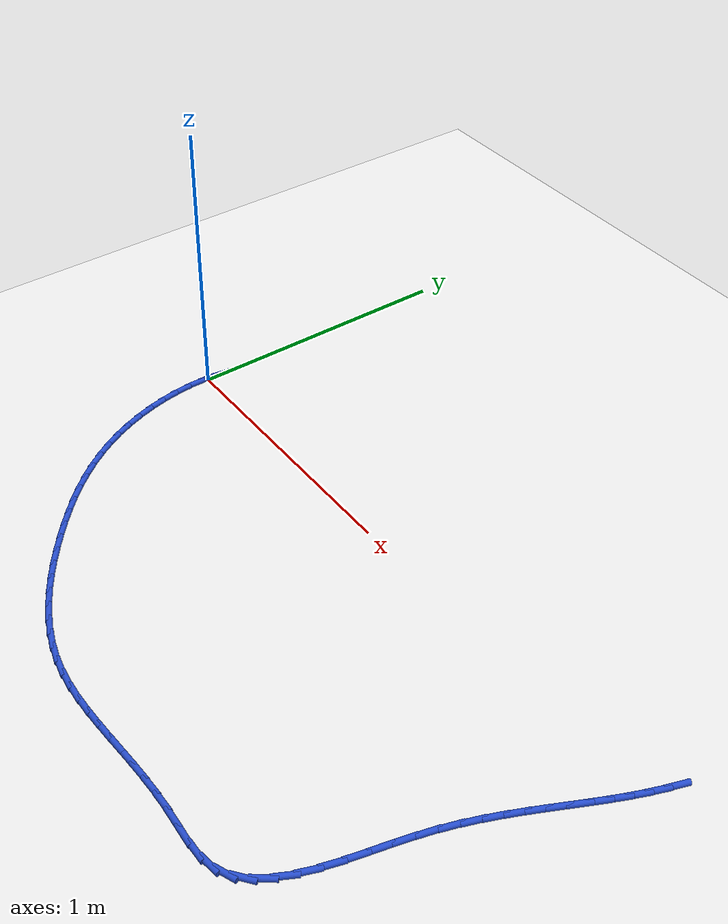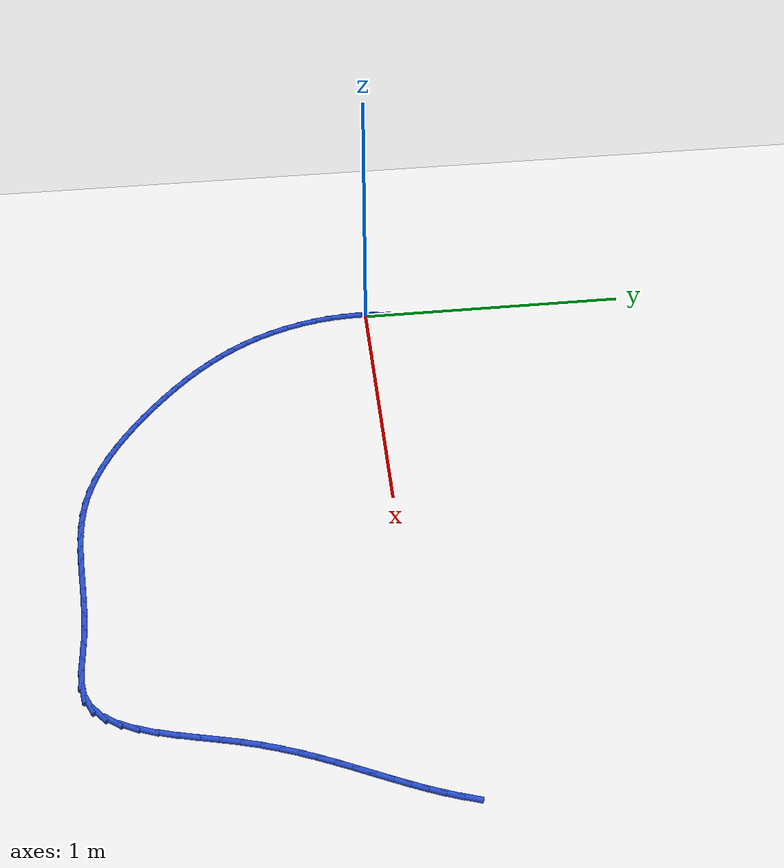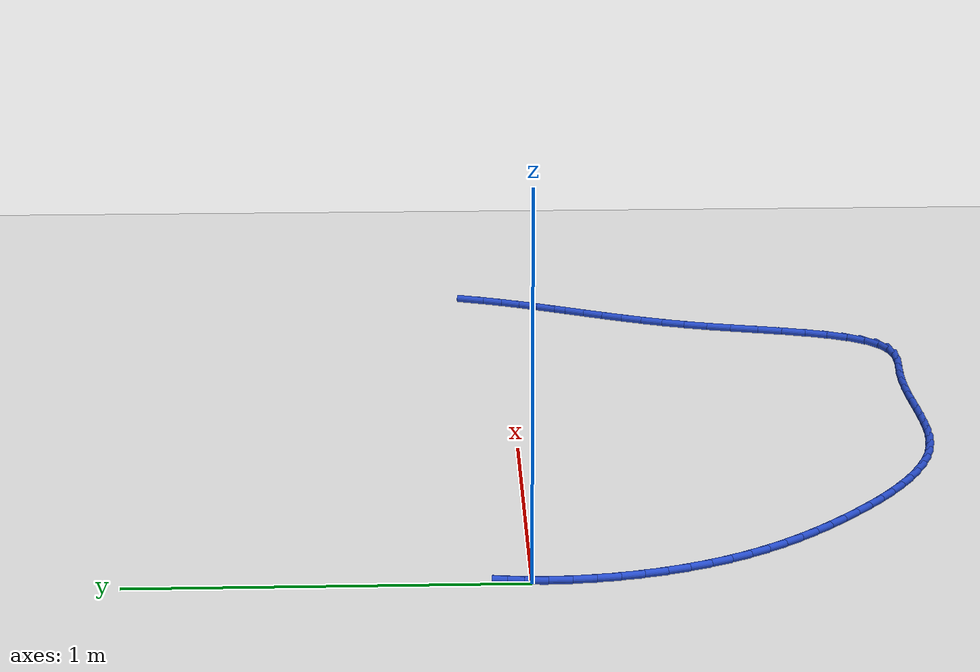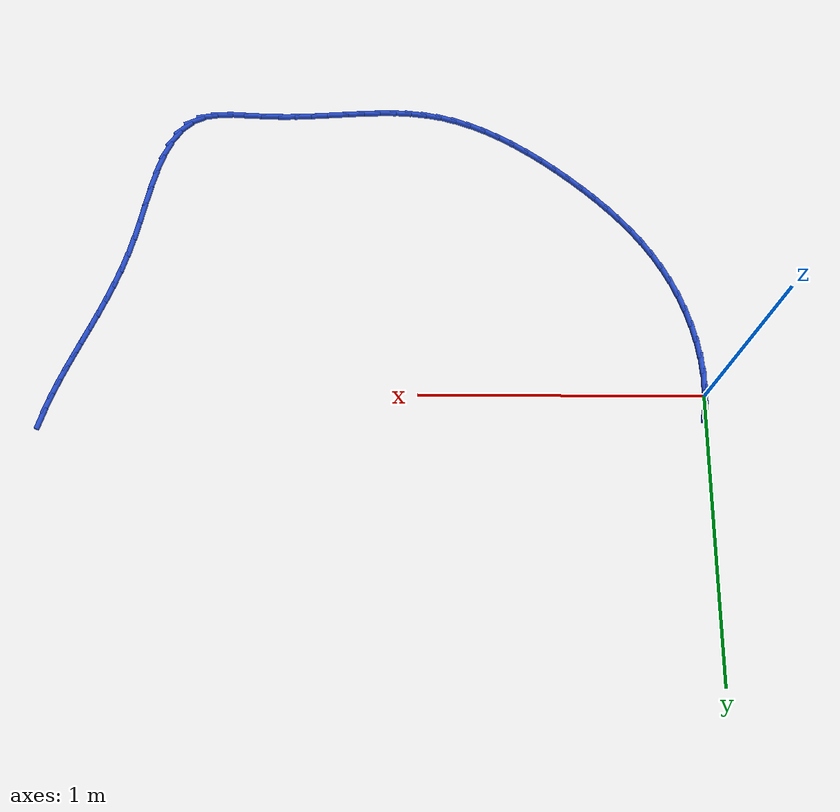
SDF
<sdf version="1.6">
 <world name="default">
  <model name="ground_plane">
   <static>1</static>
   <link name="link">
    <collision name="collision">
     <geometry><plane><normal>0 0 1</normal><size>100 100</size></plane></geometry>
     <surface><friction><ode><mu>100</mu><mu2>50</mu2></ode></friction></surface>
    </collision>
    <visual name="visual">
     <cast_shadows>0</cast_shadows>
     <geometry><plane><normal>0 0 1</normal><size>100 100</size></plane></geometry>
     <material>
      <script><uri>file://media/materials/scripts/gazebo.material</uri><name>Gazebo/WhiteGlow</name></script>
     </material>
    </visual>
   </link>
  </model>
  <model name="line">
   <link name="link_0">
    <pose>2.0816681711721685e-17 -1.8041124150158794e-16 0.01 0 1.57 1.485799585244071</pose>
    <collision name="collision">
     <geometry><cylinder><radius>0.01</radius><length>0.08</length></cylinder></geometry>
    </collision>
    <visual name="visual">
     <material>
      <script><name>Gazebo/Blue</name><uri>file://media/materials/scripts/gazebo.material</uri></script>
     </material>
     <geometry><cylinder><radius>0.01</radius><length>0.08</length></cylinder></geometry>
    </visual>
   </link>
   <link name="link_1">
    <pose>0.004936493880589521 0.0579386956487066 0.01 0 1.57 1.4162435347815363</pose>
    <collision name="collision">
     <geometry><cylinder><radius>0.01</radius><length>0.08</length></cylinder></geometry>
    </collision>
    <visual name="visual">
     <material>
      <script><name>Gazebo/Blue</name><uri>file://media/materials/scripts/gazebo.material</uri></script>
     </material>
     <geometry><cylinder><radius>0.01</radius><length>0.08</length></cylinder></geometry>
    </visual>
   </link>
   <link name="link_68">
    <pose>2.3043835177479663 0.09287211847076683 0.01 0 1.57 1.2378838537323642</pose>
    <collision name="collision">
     <geometry><cylinder><radius>0.01</radius><length>0.08</length></cylinder></geometry>
    </collision>
    <visual name="visual">
     <material>
      <script><name>Gazebo/Blue</name><uri>file://media/materials/scripts/gazebo.material</uri></script>
     </material>
     <geometry><cylinder><radius>0.01</radius><length>0.08</length></cylinder></geometry>
    </visual>
   </link>
   <link name="link_69">
    <pose>2.2858589132835667 0.039299091603942876 0.01 0 1.57 1.1953582465258388</pose>
    <collision name="collision">
     <geometry><cylinder><radius>0.01</radius><length>0.08</length></cylinder></geometry>
    </collision>
    <visual name="visual">
     <material>
      <script><name>Gazebo/Blue</name><uri>file://media/materials/scripts/gazebo.material</uri></script>
     </material>
     <geometry><cylinder><radius>0.01</radius><length>0.08</length></cylinder></geometry>
    </visual>
   </link>
   <link name="link_70">
    <pose>2.265244053709176 -0.01300528134997513 0.01 0 1.57 1.1614862032121465</pose>
    <collision name="collision">
     <geometry><cylinder><radius>0.01</radius><length>0.08</length></cylinder></geometry>
    </collision>
    <visual name="visual">
     <material>
      <script><name>Gazebo/Blue</name><uri>file://media/materials/scripts/gazebo.material</uri></script>
     </material>
     <geometry><cylinder><radius>0.01</radius><length>0.08</length></cylinder></geometry>
    </visual>
   </link>
   <link name="link_71">
    <pose>2.2429289591815174 -0.06444492095828752 0.01 0 1.57 1.1368272140684965</pose>
    <collision name="collision">
     <geometry><cylinder><radius>0.01</radius><length>0.08</length></cylinder></geometry>
    </collision>
    <visual name="visual">
     <material>
      <script><name>Gazebo/Blue</name><uri>file://media/materials/scripts/gazebo.material</uri></script>
     </material>
     <geometry><cylinder><radius>0.01</radius><length>0.08</length></cylinder></geometry>
    </visual>
   </link>
   <link name="link_72">
    <pose>2.2193036498573084 -0.11542374778829703 0.01 0 1.57 1.121634101998973</pose>
    <collision name="collision">
     <geometry><cylinder><radius>0.01</radius><length>0.08</length></cylinder></geometry>
    </collision>
    <visual name="visual">
     <material>
      <script><name>Gazebo/Blue</name><uri>file://media/materials/scripts/gazebo.material</uri></script>
     </material>
     <geometry><cylinder><radius>0.01</radius><length>0.08</length></cylinder></geometry>
    </visual>
   </link>
   <link name="link_73">
    <pose>2.194758145893269 -0.1663456824073054 0.01 0 1.57 1.115906228522763</pose>
    <collision name="collision">
     <geometry><cylinder><radius>0.01</radius><length>0.08</length></cylinder></geometry>
    </collision>
    <visual name="visual">
     <material>
      <script><name>Gazebo/Blue</name><uri>file://media/materials/scripts/gazebo.material</uri></script>
     </material>
     <geometry><cylinder><radius>0.01</radius><length>0.08</length></cylinder></geometry>
    </visual>
   </link>
   <link name="link_74">
    <pose>2.1696824674461186 -0.21761464538261466 0.01 0 1.57 1.1194357346016213</pose>
    <collision name="collision">
     <geometry><cylinder><radius>0.01</radius><length>0.08</length></cylinder></geometry>
    </collision>
    <visual name="visual">
     <material>
      <script><name>Gazebo/Blue</name><uri>file://media/materials/scripts/gazebo.material</uri></script>
     </material>
     <geometry><cylinder><radius>0.01</radius><length>0.08</length></cylinder></geometry>
    </visual>
   </link>
   <link name="link_75">
    <pose>2.144466634672577 -0.2696345572815274 0.01 0 1.57 1.1318387794932914</pose>
    <collision name="collision">
     <geometry><cylinder><radius>0.01</radius><length>0.08</length></cylinder></geometry>
    </collision>
    <visual name="visual">
     <material>
      <script><name>Gazebo/Blue</name><uri>file://media/materials/scripts/gazebo.material</uri></script>
     </material>
     <geometry><cylinder><radius>0.01</radius><length>0.08</length></cylinder></geometry>
    </visual>
   </link>
   <link name="link_76">
    <pose>2.1195006677293646 -0.32280933867134415 0.01 0 1.57 1.1525712465655042</pose>
    <collision name="collision">
     <geometry><cylinder><radius>0.01</radius><length>0.08</length></cylinder></geometry>
    </collision>
    <visual name="visual">
     <material>
      <script><name>Gazebo/Blue</name><uri>file://media/materials/scripts/gazebo.material</uri></script>
     </material>
     <geometry><cylinder><radius>0.01</radius><length>0.08</length></cylinder></geometry>
    </visual>
   </link>
   <link name="link_77">
    <pose>2.0951745867732003 -0.37754291011936736 0.01 0 1.57 1.180933799105465</pose>
    <collision name="collision">
     <geometry><cylinder><radius>0.01</radius><length>0.08</length></cylinder></geometry>
    </collision>
    <visual name="visual">
     <material>
      <script><name>Gazebo/Blue</name><uri>file://media/materials/scripts/gazebo.material</uri></script>
     </material>
     <geometry><cylinder><radius>0.01</radius><length>0.08</length></cylinder></geometry>
    </visual>
   </link>
   <link name="link_78">
    <pose>2.0718784119608036 -0.43423919219289986 0.01 0 1.57 1.2160743650007382</pose>
    <collision name="collision">
     <geometry><cylinder><radius>0.01</radius><length>0.08</length></cylinder></geometry>
    </collision>
    <visual name="visual">
     <material>
      <script><name>Gazebo/Blue</name><uri>file://media/materials/scripts/gazebo.material</uri></script>
     </material>
     <geometry><cylinder><radius>0.01</radius><length>0.08</length></cylinder></geometry>
    </visual>
   </link>
   <link name="link_79">
    <pose>2.0500021634488945 -0.49330210545924186 0.01 0 1.57 1.2569970818154903</pose>
    <collision name="collision">
     <geometry><cylinder><radius>0.01</radius><length>0.08</length></cylinder></geometry>
    </collision>
    <visual name="visual">
     <material>
      <script><name>Gazebo/Blue</name><uri>file://media/materials/scripts/gazebo.material</uri></script>
     </material>
     <geometry><cylinder><radius>0.01</radius><length>0.08</length></cylinder></geometry>
    </visual>
   </link>
   <link name="link_80">
    <pose>2.0299358613941934 -0.5551355704856962 0.01 0 1.57 1.3008335487449165</pose>
    <collision name="collision">
     <geometry><cylinder><radius>0.01</radius><length>0.08</length></cylinder></geometry>
    </collision>
    <visual name="visual">
     <material>
      <script><name>Gazebo/Blue</name><uri>file://media/materials/scripts/gazebo.material</uri></script>
     </material>
     <geometry><cylinder><radius>0.01</radius><length>0.08</length></cylinder></geometry>
    </visual>
   </link>
   <link name="link_81">
    <pose>2.011981077499993 -0.6200203260335527 0.01 0 1.57 1.3295970172447635</pose>
    <collision name="collision">
     <geometry><cylinder><radius>0.01</radius><length>0.08</length></cylinder></geometry>
    </collision>
    <visual name="visual">
     <material>
      <script><name>Gazebo/Blue</name><uri>file://media/materials/scripts/gazebo.material</uri></script>
     </material>
     <geometry><cylinder><radius>0.01</radius><length>0.08</length></cylinder></geometry>
    </visual>
   </link>
   <link name="link_82">
    <pose>1.9955166642460203 -0.686952043505674 0.01 0 1.57 1.335061045586147</pose>
    <collision name="collision">
     <geometry><cylinder><radius>0.01</radius><length>0.08</length></cylinder></geometry>
    </collision>
    <visual name="visual">
     <material>
      <script><name>Gazebo/Blue</name><uri>file://media/materials/scripts/gazebo.material</uri></script>
     </material>
     <geometry><cylinder><radius>0.01</radius><length>0.08</length></cylinder></geometry>
    </visual>
   </link>
   <link name="link_83">
    <pose>1.9793727140397324 -0.7541621383552559 0.01 0 1.57 1.3176243333979045</pose>
    <collision name="collision">
     <geometry><cylinder><radius>0.01</radius><length>0.08</length></cylinder></geometry>
    </collision>
    <visual name="visual">
     <material>
      <script><name>Gazebo/Blue</name><uri>file://media/materials/scripts/gazebo.material</uri></script>
     </material>
     <geometry><cylinder><radius>0.01</radius><length>0.08</length></cylinder></geometry>
    </visual>
   </link>
   <link name="link_84">
    <pose>1.9623720540217517 -0.8198719077275386 0.01 0 1.57 1.2748588544810358</pose>
    <collision name="collision">
     <geometry><cylinder><radius>0.01</radius><length>0.08</length></cylinder></geometry>
    </collision>
    <visual name="visual">
     <material>
      <script><name>Gazebo/Blue</name><uri>file://media/materials/scripts/gazebo.material</uri></script>
     </material>
     <geometry><cylinder><radius>0.01</radius><length>0.08</length></cylinder></geometry>
    </visual>
   </link>
   <link name="link_85">
    <pose>1.9433375113327018 -0.8823026487677648 0.01 0 1.57 1.2009066091767648</pose>
    <collision name="collision">
     <geometry><cylinder><radius>0.01</radius><length>0.08</length></cylinder></geometry>
    </collision>
    <visual name="visual">
     <material>
      <script><name>Gazebo/Blue</name><uri>file://media/materials/scripts/gazebo.material</uri></script>
     </material>
     <geometry><cylinder><radius>0.01</radius><length>0.08</length></cylinder></geometry>
    </visual>
   </link>
   <link name="link_86">
    <pose>1.9210919131132036 -0.9396756586211767 0.01 0 1.57 1.0857664784242493</pose>
    <collision name="collision">
     <geometry><cylinder><radius>0.01</radius><length>0.08</length></cylinder></geometry>
    </collision>
    <visual name="visual">
     <material>
      <script><name>Gazebo/Blue</name><uri>file://media/materials/scripts/gazebo.material</uri></script>
     </material>
     <geometry><cylinder><radius>0.01</radius><length>0.08</length></cylinder></geometry>
    </visual>
   </link>
   <link name="link_87">
    <pose>1.8944580865038811 -0.9902122344330149 0.01 0 1.57 0.9158209402124141</pose>
    <collision name="collision">
     <geometry><cylinder><radius>0.01</radius><length>0.08</length></cylinder></geometry>
    </collision>
    <visual name="visual">
     <material>
      <script><name>Gazebo/Blue</name><uri>file://media/materials/scripts/gazebo.material</uri></script>
     </material>
     <geometry><cylinder><radius>0.01</radius><length>0.08</length></cylinder></geometry>
    </visual>
   </link>
   <link name="link_88">
    <pose>1.8622588586453563 -1.032133673348522 0.01 0 1.57 0.6805721566438457</pose>
    <collision name="collision">
     <geometry><cylinder><radius>0.01</radius><length>0.08</length></cylinder></geometry>
    </collision>
    <visual name="visual">
     <material>
      <script><name>Gazebo/Blue</name><uri>file://media/materials/scripts/gazebo.material</uri></script>
     </material>
     <geometry><cylinder><radius>0.01</radius><length>0.08</length></cylinder></geometry>
    </visual>
   </link>
   <link name="link_89">
    <pose>1.8233170566782526 -1.0636612725129397 0.01 0 1.57 0.39235285872559467</pose>
    <collision name="collision">
     <geometry><cylinder><radius>0.01</radius><length>0.08</length></cylinder></geometry>
    </collision>
    <visual name="visual">
     <material>
      <script><name>Gazebo/Blue</name><uri>file://media/materials/scripts/gazebo.material</uri></script>
     </material>
     <geometry><cylinder><radius>0.01</radius><length>0.08</length></cylinder></geometry>
    </visual>
   </link>
   <link name="link_90">
    <pose>1.776473314003852 -1.0830455877508562 0.01 0 1.57 0.13885991426151761</pose>
    <collision name="collision">
     <geometry><cylinder><radius>0.01</radius><length>0.08</length></cylinder></geometry>
    </collision>
    <visual name="visual">
     <material>
      <script><name>Gazebo/Blue</name><uri>file://media/materials/scripts/gazebo.material</uri></script>
     </material>
     <geometry><cylinder><radius>0.01</radius><length>0.08</length></cylinder></geometry>
    </visual>
   </link>
   <link name="link_91">
    <pose>1.7218704295000535 -1.0906768516480394 0.01 0 1.57 -0.0028806379219940845</pose>
    <collision name="collision">
     <geometry><cylinder><radius>0.01</radius><length>0.08</length></cylinder></geometry>
    </collision>
    <visual name="visual">
     <material>
      <script><name>Gazebo/Blue</name><uri>file://media/materials/scripts/gazebo.material</uri></script>
     </material>
     <geometry><cylinder><radius>0.01</radius><length>0.08</length></cylinder></geometry>
    </visual>
   </link>
   <link name="link_92">
    <pose>1.6618168732539154 -1.0905038586180629 0.01 0 1.57 -0.05854749431642583</pose>
    <collision name="collision">
     <geometry><cylinder><radius>0.01</radius><length>0.08</length></cylinder></geometry>
    </collision>
    <visual name="visual">
     <material>
      <script><name>Gazebo/Blue</name><uri>file://media/materials/scripts/gazebo.material</uri></script>
     </material>
     <geometry><cylinder><radius>0.01</radius><length>0.08</length></cylinder></geometry>
    </visual>
   </link>
   <link name="link_93">
    <pose>1.5988257590343316 -1.0868116670426473 0.01 0 1.57 -0.047304843614724174</pose>
    <collision name="collision">
     <geometry><cylinder><radius>0.01</radius><length>0.08</length></cylinder></geometry>
    </collision>
    <visual name="visual">
     <material>
      <script><name>Gazebo/Blue</name><uri>file://media/materials/scripts/gazebo.material</uri></script>
     </material>
     <geometry><cylinder><radius>0.01</radius><length>0.08</length></cylinder></geometry>
    </visual>
   </link>
   <link name="link_94">
    <pose>1.535370485622706 -1.083807684203939 0.01 0 1.57 -0.0056696690379753915</pose>
    <collision name="collision">
     <geometry><cylinder><radius>0.01</radius><length>0.08</length></cylinder></geometry>
    </collision>
    <visual name="visual">
     <material>
      <script><name>Gazebo/Blue</name><uri>file://media/materials/scripts/gazebo.material</uri></script>
     </material>
     <geometry><cylinder><radius>0.01</radius><length>0.08</length></cylinder></geometry>
    </visual>
   </link>
   <link name="link_95">
    <pose>1.4727754543612854 -1.083452787290519 0.01 0 1.57 0.02783856869237032</pose>
    <collision name="collision">
     <geometry><cylinder><radius>0.01</radius><length>0.08</length></cylinder></geometry>
    </collision>
    <visual name="visual">
     <material>
      <script><name>Gazebo/Blue</name><uri>file://media/materials/scripts/gazebo.material</uri></script>
     </material>
     <geometry><cylinder><radius>0.01</radius><length>0.08</length></cylinder></geometry>
    </visual>
   </link>
   <link name="link_96">
    <pose>1.4110676274145046 -1.0851710887792485 0.01 0 1.57 0.0505563504235515</pose>
    <collision name="collision">
     <geometry><cylinder><radius>0.01</radius><length>0.08</length></cylinder></geometry>
    </collision>
    <visual name="visual">
     <material>
      <script><name>Gazebo/Blue</name><uri>file://media/materials/scripts/gazebo.material</uri></script>
     </material>
     <geometry><cylinder><radius>0.01</radius><length>0.08</length></cylinder></geometry>
    </visual>
   </link>
   <link name="link_97">
    <pose>1.3502044261504644 -1.0882507343585774 0.01 0 1.57 0.06200937147188459</pose>
    <collision name="collision">
     <geometry><cylinder><radius>0.01</radius><length>0.08</length></cylinder></geometry>
    </collision>
    <visual name="visual">
     <material>
      <script><name>Gazebo/Blue</name><uri>file://media/materials/scripts/gazebo.material</uri></script>
     </material>
     <geometry><cylinder><radius>0.01</radius><length>0.08</length></cylinder></geometry>
    </visual>
   </link>
   <link name="link_98">
    <pose>1.2901432719372667 -1.0919798697169578 0.01 0 1.57 0.06175386863430074</pose>
    <collision name="collision">
     <geometry><cylinder><radius>0.01</radius><length>0.08</length></cylinder></geometry>
    </collision>
    <visual name="visual">
     <material>
      <script><name>Gazebo/Blue</name><uri>file://media/materials/scripts/gazebo.material</uri></script>
     </material>
     <geometry><cylinder><radius>0.01</radius><length>0.08</length></cylinder></geometry>
    </visual>
   </link>
   <link name="link_99">
    <pose>1.230841586143012 -1.09564664054284 0.01 0 1.57 0.04933370350636287</pose>
    <collision name="collision">
     <geometry><cylinder><radius>0.01</radius><length>0.08</length></cylinder></geometry>
    </collision>
    <visual name="visual">
     <material>
      <script><name>Gazebo/Blue</name><uri>file://media/materials/scripts/gazebo.material</uri></script>
     </material>
     <geometry><cylinder><radius>0.01</radius><length>0.08</length></cylinder></geometry>
    </visual>
   </link>
   <link name="link_100">
    <pose>1.172256790135804 -1.0985391925246757 0.01 0 1.57 0.024282345137615638</pose>
    <collision name="collision">
     <geometry><cylinder><radius>0.01</radius><length>0.08</length></cylinder></geometry>
    </collision>
    <visual name="visual">
     <material>
      <script><name>Gazebo/Blue</name><uri>file://media/materials/scripts/gazebo.material</uri></script>
     </material>
     <geometry><cylinder><radius>0.01</radius><length>0.08</length></cylinder></geometry>
    </visual>
   </link>
   <link name="link_101">
    <pose>1.1143463052837435 -1.0999456713509153 0.01 0 1.57 -0.013816611673610714</pose>
    <collision name="collision">
     <geometry><cylinder><radius>0.01</radius><length>0.08</length></cylinder></geometry>
    </collision>
    <visual name="visual">
     <material>
      <script><name>Gazebo/Blue</name><uri>file://media/materials/scripts/gazebo.material</uri></script>
     </material>
     <geometry><cylinder><radius>0.01</radius><length>0.08</length></cylinder></geometry>
    </visual>
   </link>
   <link name="link_102">
    <pose>1.0570675529549312 -1.0991542227100106 0.01 0 1.57 -0.06519687640152971</pose>
    <collision name="collision">
     <geometry><cylinder><radius>0.01</radius><length>0.08</length></cylinder></geometry>
    </collision>
    <visual name="visual">
     <material>
      <script><name>Gazebo/Blue</name><uri>file://media/materials/scripts/gazebo.material</uri></script>
     </material>
     <geometry><cylinder><radius>0.01</radius><length>0.08</length></cylinder></geometry>
    </visual>
   </link>
   <link name="link_103">
    <pose>1.0003779545174707 -1.0954529922904128 0.01 0 1.57 -0.12970014630250015</pose>
    <collision name="collision">
     <geometry><cylinder><radius>0.01</radius><length>0.08</length></cylinder></geometry>
    </collision>
    <visual name="visual">
     <material>
      <script><name>Gazebo/Blue</name><uri>file://media/materials/scripts/gazebo.material</uri></script>
     </material>
     <geometry><cylinder><radius>0.01</radius><length>0.08</length></cylinder></geometry>
    </visual>
   </link>
   <link name="link_104">
    <pose>0.944234931339462 -1.088130125780572 0.01 0 1.57 -0.206264201338014</pose>
    <collision name="collision">
     <geometry><cylinder><radius>0.01</radius><length>0.08</length></cylinder></geometry>
    </collision>
    <visual name="visual">
     <material>
      <script><name>Gazebo/Blue</name><uri>file://media/materials/scripts/gazebo.material</uri></script>
     </material>
     <geometry><cylinder><radius>0.01</radius><length>0.08</length></cylinder></geometry>
    </visual>
   </link>
   <link name="link_105">
    <pose>0.8885977350485986 -1.0764885977892211 0.01 0 1.57 -0.2854113561639701</pose>
    <collision name="collision">
     <geometry><cylinder><radius>0.01</radius><length>0.08</length></cylinder></geometry>
    </collision>
    <visual name="visual">
     <material>
      <script><name>Gazebo/Blue</name><uri>file://media/materials/scripts/gazebo.material</uri></script>
     </material>
     <geometry><cylinder><radius>0.01</radius><length>0.08</length></cylinder></geometry>
    </visual>
   </link>
   <link name="link_106">
    <pose>0.8334856126839888 -1.0603174708972343 0.01 0 1.57 -0.35703404079352147</pose>
    <collision name="collision">
     <geometry><cylinder><radius>0.01</radius><length>0.08</length></cylinder></geometry>
    </collision>
    <visual name="visual">
     <material>
      <script><name>Gazebo/Blue</name><uri>file://media/materials/scripts/gazebo.material</uri></script>
     </material>
     <geometry><cylinder><radius>0.01</radius><length>0.08</length></cylinder></geometry>
    </visual>
   </link>
   <link name="link_107">
    <pose>0.7789898455695135 -1.0399894356427626 0.01 0 1.57 -0.4209190618454552</pose>
    <collision name="collision">
     <geometry><cylinder><radius>0.01</radius><length>0.08</length></cylinder></geometry>
    </collision>
    <visual name="visual">
     <material>
      <script><name>Gazebo/Blue</name><uri>file://media/materials/scripts/gazebo.material</uri></script>
     </material>
     <geometry><cylinder><radius>0.01</radius><length>0.08</length></cylinder></geometry>
    </visual>
   </link>
   <link name="link_108">
    <pose>0.7252059783336141 -1.0159117242233664 0.01 0 1.57 -0.4776217020144161</pose>
    <collision name="collision">
     <geometry><cylinder><radius>0.01</radius><length>0.08</length></cylinder></geometry>
    </collision>
    <visual name="visual">
     <material>
      <script><name>Gazebo/Blue</name><uri>file://media/materials/scripts/gazebo.material</uri></script>
     </material>
     <geometry><cylinder><radius>0.01</radius><length>0.08</length></cylinder></geometry>
    </visual>
   </link>
   <link name="link_109">
    <pose>0.6722295556047306 -0.9884915688366068 0.01 0 1.57 -0.5277763369182151</pose>
    <collision name="collision">
     <geometry><cylinder><radius>0.01</radius><length>0.08</length></cylinder></geometry>
    </collision>
    <visual name="visual">
     <material>
      <script><name>Gazebo/Blue</name><uri>file://media/materials/scripts/gazebo.material</uri></script>
     </material>
     <geometry><cylinder><radius>0.01</radius><length>0.08</length></cylinder></geometry>
    </visual>
   </link>
   <link name="link_110">
    <pose>0.620156122011302 -0.9581362016800444 0.01 0 1.57 -0.5720226989309292</pose>
    <collision name="collision">
     <geometry><cylinder><radius>0.01</radius><length>0.08</length></cylinder></geometry>
    </collision>
    <visual name="visual">
     <material>
      <script><name>Gazebo/Blue</name><uri>file://media/materials/scripts/gazebo.material</uri></script>
     </material>
     <geometry><cylinder><radius>0.01</radius><length>0.08</length></cylinder></geometry>
    </visual>
   </link>
   <link name="link_111">
    <pose>0.56908122218177 -0.9252528549512409 0.01 0 1.57 -0.6109611715567999</pose>
    <collision name="collision">
     <geometry><cylinder><radius>0.01</radius><length>0.08</length></cylinder></geometry>
    </collision>
    <visual name="visual">
     <material>
      <script><name>Gazebo/Blue</name><uri>file://media/materials/scripts/gazebo.material</uri></script>
     </material>
     <geometry><cylinder><radius>0.01</radius><length>0.08</length></cylinder></geometry>
    </visual>
   </link>
   <link name="link_112">
    <pose>0.5191004007445743 -0.890248760847757 0.01 0 1.57 -0.6451284024691079</pose>
    <collision name="collision">
     <geometry><cylinder><radius>0.01</radius><length>0.08</length></cylinder></geometry>
    </collision>
    <visual name="visual">
     <material>
      <script><name>Gazebo/Blue</name><uri>file://media/materials/scripts/gazebo.material</uri></script>
     </material>
     <geometry><cylinder><radius>0.01</radius><length>0.08</length></cylinder></geometry>
    </visual>
   </link>
   <link name="link_113">
    <pose>0.47030920232815465 -0.8535311515671531 0.01 0 1.57 -0.674996351270086</pose>
    <collision name="collision">
     <geometry><cylinder><radius>0.01</radius><length>0.08</length></cylinder></geometry>
    </collision>
    <visual name="visual">
     <material>
      <script><name>Gazebo/Blue</name><uri>file://media/materials/scripts/gazebo.material</uri></script>
     </material>
     <geometry><cylinder><radius>0.01</radius><length>0.08</length></cylinder></geometry>
    </visual>
   </link>
   <link name="link_114">
    <pose>0.4228033220227444 -0.8155065444278752 0.01 0 1.57 -0.7033711488560755</pose>
    <collision name="collision">
     <geometry><cylinder><radius>0.01</radius><length>0.08</length></cylinder></geometry>
    </collision>
    <visual name="visual">
     <material>
      <script><name>Gazebo/Blue</name><uri>file://media/materials/scripts/gazebo.material</uri></script>
     </material>
     <geometry><cylinder><radius>0.01</radius><length>0.08</length></cylinder></geometry>
    </visual>
   </link>
   <link name="link_115">
    <pose>0.3767127303876893 -0.7764186059903782 0.01 0 1.57 -0.7359837541998256</pose>
    <collision name="collision">
     <geometry><cylinder><radius>0.01</radius><length>0.08</length></cylinder></geometry>
    </collision>
    <visual name="visual">
     <material>
      <script><name>Gazebo/Blue</name><uri>file://media/materials/scripts/gazebo.material</uri></script>
     </material>
     <geometry><cylinder><radius>0.01</radius><length>0.08</length></cylinder></geometry>
    </visual>
   </link>
   <link name="link_116">
    <pose>0.33224507303198664 -0.7361419505150484 0.01 0 1.57 -0.7737123093923532</pose>
    <collision name="collision">
     <geometry><cylinder><radius>0.01</radius><length>0.08</length></cylinder></geometry>
    </collision>
    <visual name="visual">
     <material>
      <script><name>Gazebo/Blue</name><uri>file://media/materials/scripts/gazebo.material</uri></script>
     </material>
     <geometry><cylinder><radius>0.01</radius><length>0.08</length></cylinder></geometry>
    </visual>
   </link>
   <link name="link_117">
    <pose>0.2896186943476711 -0.6945003598455974 0.01 0 1.57 -0.8166238796003558</pose>
    <collision name="collision">
     <geometry><cylinder><radius>0.01</radius><length>0.08</length></cylinder></geometry>
    </collision>
    <visual name="visual">
     <material>
      <script><name>Gazebo/Blue</name><uri>file://media/materials/scripts/gazebo.material</uri></script>
     </material>
     <geometry><cylinder><radius>0.01</radius><length>0.08</length></cylinder></geometry>
    </visual>
   </link>
   <link name="link_118">
    <pose>0.24905193872677814 -0.651317615825737 0.01 0 1.57 -0.864705142949989</pose>
    <collision name="collision">
     <geometry><cylinder><radius>0.01</radius><length>0.08</length></cylinder></geometry>
    </collision>
    <visual name="visual">
     <material>
      <script><name>Gazebo/Blue</name><uri>file://media/materials/scripts/gazebo.material</uri></script>
     </material>
     <geometry><cylinder><radius>0.01</radius><length>0.08</length></cylinder></geometry>
    </visual>
   </link>
   <link name="link_119">
    <pose>0.2107631505613445 -0.6064175002991804 0.01 0 1.57 -0.917827606125121</pose>
    <collision name="collision">
     <geometry><cylinder><radius>0.01</radius><length>0.08</length></cylinder></geometry>
    </collision>
    <visual name="visual">
     <material>
      <script><name>Gazebo/Blue</name><uri>file://media/materials/scripts/gazebo.material</uri></script>
     </material>
     <geometry><cylinder><radius>0.01</radius><length>0.08</length></cylinder></geometry>
    </visual>
   </link>
   <link name="link_120">
    <pose>0.17497067424340526 -0.5596237951096393 0.01 0 1.57 -0.9757129425393495</pose>
    <collision name="collision">
     <geometry><cylinder><radius>0.01</radius><length>0.08</length></cylinder></geometry>
    </collision>
    <visual name="visual">
     <material>
      <script><name>Gazebo/Blue</name><uri>file://media/materials/scripts/gazebo.material</uri></script>
     </material>
     <geometry><cylinder><radius>0.01</radius><length>0.08</length></cylinder></geometry>
    </visual>
   </link>
   <link name="link_121">
    <pose>0.1418928541649961 -0.510760282100826 0.01 0 1.57 -1.0379037672878966</pose>
    <collision name="collision">
     <geometry><cylinder><radius>0.01</radius><length>0.08</length></cylinder></geometry>
    </collision>
    <visual name="visual">
     <material>
      <script><name>Gazebo/Blue</name><uri>file://media/materials/scripts/gazebo.material</uri></script>
     </material>
     <geometry><cylinder><radius>0.01</radius><length>0.08</length></cylinder></geometry>
    </visual>
   </link>
   <link name="link_122">
    <pose>0.11174803060054404 -0.4596508317901996 0.01 0 1.57 -1.1027067864481395</pose>
    <collision name="collision">
     <geometry><cylinder><radius>0.01</radius><length>0.08</length></cylinder></geometry>
    </collision>
    <visual name="visual">
     <material>
      <script><name>Gazebo/Blue</name><uri>file://media/materials/scripts/gazebo.material</uri></script>
     </material>
     <geometry><cylinder><radius>0.01</radius><length>0.08</length></cylinder></geometry>
    </visual>
   </link>
   <link name="link_123">
    <pose>0.08474864143161485 -0.40624642421855406 0.01 0 1.57 -1.1669697322483366</pose>
    <collision name="collision">
     <geometry><cylinder><radius>0.01</radius><length>0.08</length></cylinder></geometry>
    </collision>
    <visual name="visual">
     <material>
      <script><name>Gazebo/Blue</name><uri>file://media/materials/scripts/gazebo.material</uri></script>
     </material>
     <geometry><cylinder><radius>0.01</radius><length>0.08</length></cylinder></geometry>
    </visual>
   </link>
   <link name="link_124">
    <pose>0.06108944312186556 -0.3508788132341087 0.01 0 1.57 -1.2309525716259302</pose>
    <collision name="collision">
     <geometry><cylinder><radius>0.01</radius><length>0.08</length></cylinder></geometry>
    </collision>
    <visual name="visual">
     <material>
      <script><name>Gazebo/Blue</name><uri>file://media/materials/scripts/gazebo.material</uri></script>
     </material>
     <geometry><cylinder><radius>0.01</radius><length>0.08</length></cylinder></geometry>
    </visual>
   </link>
   <link name="link_125">
    <pose>0.040961895290828984 -0.2939507510572444 0.01 0 1.57 -1.295547250252419</pose>
    <collision name="collision">
     <geometry><cylinder><radius>0.01</radius><length>0.08</length></cylinder></geometry>
    </collision>
    <visual name="visual">
     <material>
      <script><name>Gazebo/Blue</name><uri>file://media/materials/scripts/gazebo.material</uri></script>
     </material>
     <geometry><cylinder><radius>0.01</radius><length>0.08</length></cylinder></geometry>
    </visual>
   </link>
   <link name="link_126">
    <pose>0.02455745755803814 -0.23586498990834207 0.01 0 1.57 -1.3616350570605726</pose>
    <collision name="collision">
     <geometry><cylinder><radius>0.01</radius><length>0.08</length></cylinder></geometry>
    </collision>
    <visual name="visual">
     <material>
      <script><name>Gazebo/Blue</name><uri>file://media/materials/scripts/gazebo.material</uri></script>
     </material>
     <geometry><cylinder><radius>0.01</radius><length>0.08</length></cylinder></geometry>
    </visual>
   </link>
   <link name="link_127">
    <pose>0.012067589543026721 -0.17702428200778522 0.01 0 1.57 -1.430096316336359</pose>
    <collision name="collision">
     <geometry><cylinder><radius>0.01</radius><length>0.08</length></cylinder></geometry>
    </collision>
    <visual name="visual">
     <material>
      <script><name>Gazebo/Blue</name><uri>file://media/materials/scripts/gazebo.material</uri></script>
     </material>
     <geometry><cylinder><radius>0.01</radius><length>0.08</length></cylinder></geometry>
    </visual>
   </link>
   <link name="link_128">
    <pose>0.0036837508653277673 -0.11783137957595488 0.01 0 1.57 -1.501812493253523</pose>
    <collision name="collision">
     <geometry><cylinder><radius>0.01</radius><length>0.08</length></cylinder></geometry>
    </collision>
    <visual name="visual">
     <material>
      <script><name>Gazebo/Blue</name><uri>file://media/materials/scripts/gazebo.material</uri></script>
     </material>
     <geometry><cylinder><radius>0.01</radius><length>0.08</length></cylinder></geometry>
    </visual>
   </link>
   <link name="link_129">
    <pose>-0.0004025988555255468 -0.05868903483323262 0.01 0 1.57 1.5639365694021214</pose>
    <collision name="collision">
     <geometry><cylinder><radius>0.01</radius><length>0.08</length></cylinder></geometry>
    </collision>
    <visual name="visual">
     <material>
      <script><name>Gazebo/Blue</name><uri>file://media/materials/scripts/gazebo.material</uri></script>
     </material>
     <geometry><cylinder><radius>0.01</radius><length>0.08</length></cylinder></geometry>
    </visual>
   </link>
   <link name="link_130">
    <pose>4.85722573273506e-17 -3.191891195797325e-16 0.01 0 1.57 1.4831304392116922</pose>
    <collision name="collision">
     <geometry><cylinder><radius>0.01</radius><length>0.08</length></cylinder></geometry>
    </collision>
    <visual name="visual">
     <material>
      <script><name>Gazebo/Blue</name><uri>file://media/materials/scripts/gazebo.material</uri></script>
     </material>
     <geometry><cylinder><radius>0.01</radius><length>0.08</length></cylinder></geometry>
    </visual>
   </link>
   <link name="link_131">
    <pose>0.005083007051437771 0.05783297270336034 0.01 0 1.57 1.4831304392116915</pose>
    <collision name="collision">
     <geometry><cylinder><radius>0.01</radius><length>0.08</length></cylinder></geometry>
    </collision>
    <visual name="visual">
     <material>
      <script><name>Gazebo/Blue</name><uri>file://media/materials/scripts/gazebo.material</uri></script>
     </material>
     <geometry><cylinder><radius>0.01</radius><length>0.08</length></cylinder></geometry>
    </visual>
   </link>
  </model>
 </world>
</sdf>
